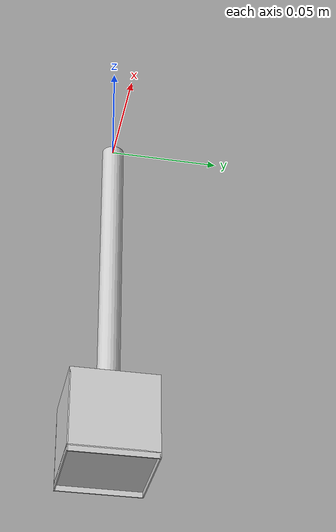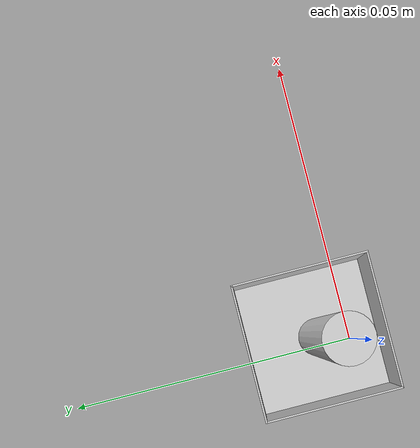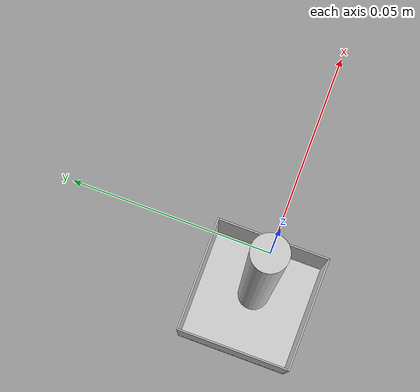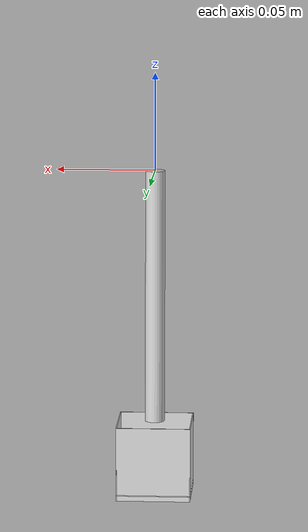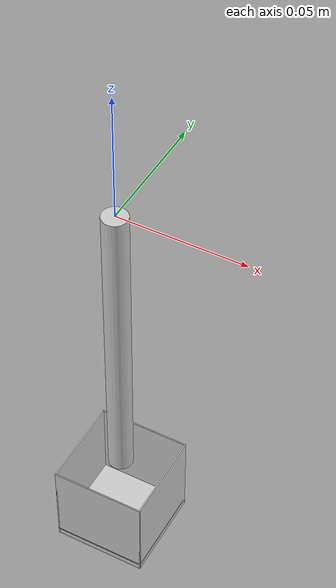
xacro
<?xml version="1.0"?>
<robot name="cube_wand" xmlns:xacro="http://www.ros.org/wiki/xacro">
  <xacro:include filename="aruco_marker.xacro"/>

  <property name="pointer_length" value="0.130175"/>
  <property name="box_side_length" value="0.0381"/>
  <property name="box_center_z" value="${-pointer_length - 0.5*box_side_length}"/>
  <property name="box_facet_thickness" value="0.005"/>

  <material name="gray">
    <color rgba="0.8 0.8 0.8 1.0"/>
  </material>

  <link name="tool_frame"/>

  <xacro:aruco_marker id="51" marker_size="${box_side_length}" parent="tool_frame">
    <origin xyz="${0.5*box_side_length} 0.0 ${box_center_z}" rpy="-1.5708 0.0 -1.5708"/>
    <material name="gray"/>
  </xacro:aruco_marker>

  <xacro:aruco_marker id="52" marker_size="${box_side_length}" parent="tool_frame">
    <origin xyz="0.0 ${0.5*box_side_length} ${box_center_z}" rpy="-1.5708 0.0 0.0"/>
    <material name="gray"/>
  </xacro:aruco_marker>

  <xacro:aruco_marker id="53" marker_size="${box_side_length}" parent="tool_frame">
    <origin xyz="${-0.5*box_side_length} 0.0 ${box_center_z}" rpy="-1.5708 0.0 1.5708"/>
    <material name="gray"/>
  </xacro:aruco_marker>

  <xacro:aruco_marker id="54" marker_size="${box_side_length}" parent="tool_frame">
    <origin xyz="0.0 ${-0.5*box_side_length} ${box_center_z}" rpy="-1.5708 0.0 3.14159"/>
    <material name="gray"/>
  </xacro:aruco_marker>

  <xacro:aruco_marker id="55" marker_size="${box_side_length}" parent="tool_frame">
    <origin xyz="0.0 0.0 ${-pointer_length - box_side_length + 0.5*box_facet_thickness}" rpy="3.141592 0.0 0.0"/>
    <material name="gray"/>
  </xacro:aruco_marker>

  <link name="pointer">
    <visual>
	    <geometry>
	      <cylinder radius="0.005" length="${pointer_length}"/>
	    </geometry>
	    <material name="gray"/>
  	</visual>
  </link>

  <joint name="tool_frame_to_pointer" type="fixed">
  	<origin xyz="0 0 ${-0.5 * pointer_length}"/>
  	<parent link="tool_frame"/>
  	<child link="pointer"/>
  </joint>
</robot>

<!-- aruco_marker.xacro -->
<robot name="aruco_marker" xmlns:xacro="http://www.ros.org/wiki/xacro">
  <xacro:macro name="aruco_marker" params="id parent marker_size:=0.0254 marker_thickness:=0.0005 *origin *material">
    <link name="aruco_${id}">
      <visual>
        <origin xyz="0.0 0.0 ${-0.5 * marker_thickness}"/>
        <geometry>
          <box size="${marker_size} ${marker_size} ${marker_thickness}"/>
        </geometry>
        <xacro:insert_block name="material"/>
      </visual>
    </link>

    <joint name="aruco_${id}_joint" type="fixed">
      <xacro:insert_block name="origin"/>
      <parent link="${parent}"/>
      <child link="aruco_${id}"/>
    </joint>
  </xacro:macro>
</robot>
